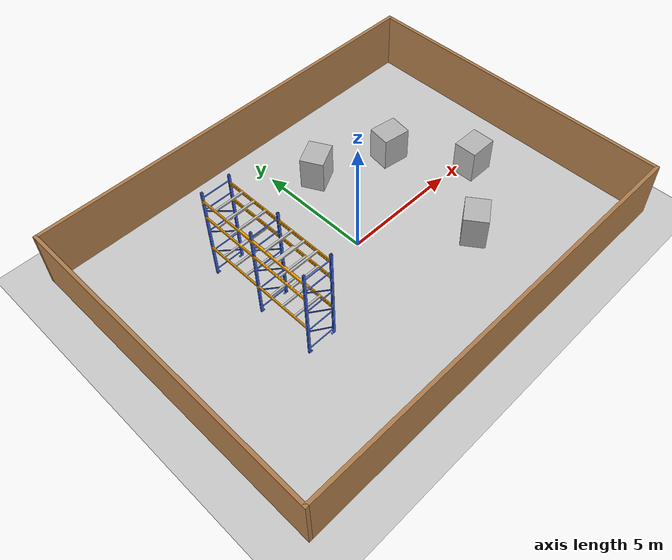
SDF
<sdf version="1.7">
 <world name="default">
  <scene>
   <sky><clouds><speed>12</speed></clouds></sky>
   <ambient>0.4 0.4 0.4 1</ambient>
   <background>0.7 0.7 0.7 1</background>
   <shadows>1</shadows>
  </scene>
  <light name="sun" type="directional">
   <pose>0 0 10 0 -0 0</pose>
   <diffuse>0.8 0.8 0.8 1</diffuse>
   <specular>0.2 0.2 0.2 1</specular>
   <attenuation>
    <range>1000</range>
    <constant>0.9</constant>
    <linear>0.01</linear>
    <quadratic>0.001</quadratic>
   </attenuation>
   <direction>-0.5 0.1 -0.9</direction>
   <spot><inner_angle>0</inner_angle><outer_angle>0</outer_angle><falloff>0</falloff></spot>
  </light>
  <model name="ground_plane">
   <static>1</static>
   <link name="link">
    <collision name="collision">
     <geometry><plane><normal>0 0 1</normal><size>100 100</size></plane></geometry>
     <surface>
      <contact><collide_bitmask>65535</collide_bitmask></contact>
      <friction><ode><mu>100</mu><mu2>50</mu2></ode></friction>
     </surface>
    </collision>
    <visual name="visual">
     <cast_shadows>0</cast_shadows>
     <geometry><plane><normal>0 0 1</normal><size>100 100</size></plane></geometry>
     <material>
      <script><uri>file://media/materials/scripts/gazebo.material</uri><name>Gazebo/Grey</name></script>
     </material>
    </visual>
   </link>
  </model>
  <gravity>0 0 -9.8</gravity>
  <magnetic_field>6e-06 2.3e-05 -4.2e-05</magnetic_field>
  <atmosphere type="adiabatic"/>
  <physics type="ode">
   <max_step_size>0.001</max_step_size>
   <real_time_factor>1</real_time_factor>
   <real_time_update_rate>1000</real_time_update_rate>
  </physics>
  <spherical_coordinates>
   <surface_model>EARTH_WGS84</surface_model>
   <latitude_deg>0</latitude_deg>
   <longitude_deg>0</longitude_deg>
   <elevation>0</elevation>
   <heading_deg>0</heading_deg>
  </spherical_coordinates>
  <model name="wall">
   <link name="Wall_16">
    <collision name="Wall_16_Collision">
     <geometry><box><size>18.5 0.15 2.5</size></box></geometry>
     <pose>0 0 1.25 0 -0 0</pose>
    </collision>
    <visual name="Wall_16_Visual">
     <pose>0 0 1.25 0 -0 0</pose>
     <geometry><box><size>18.5 0.15 2.5</size></box></geometry>
     <material>
      <script><uri>file://media/materials/scripts/gazebo.material</uri><name>Gazebo/Wood</name></script>
      <ambient>0.760784 0.662745 0.627451 1</ambient>
     </material>
     <meta><layer>0</layer></meta>
    </visual>
    <pose>0 6.925 0 0 -0 0</pose>
   </link>
   <link name="Wall_17">
    <collision name="Wall_17_Collision">
     <geometry><box><size>14 0.15 2.5</size></box></geometry>
     <pose>0 0 1.25 0 -0 0</pose>
    </collision>
    <visual name="Wall_17_Visual">
     <pose>0 0 1.25 0 -0 0</pose>
     <geometry><box><size>14 0.15 2.5</size></box></geometry>
     <material>
      <script><uri>file://media/materials/scripts/gazebo.material</uri><name>Gazebo/Wood</name></script>
      <ambient>1 1 1 1</ambient>
     </material>
     <meta><layer>0</layer></meta>
    </visual>
    <pose>9.175 0 0 0 -0 -1.5708</pose>
   </link>
   <link name="Wall_21">
    <collision name="Wall_21_Collision">
     <geometry><box><size>18.5 0.15 2.5</size></box></geometry>
     <pose>0 0 1.25 0 -0 0</pose>
    </collision>
    <visual name="Wall_21_Visual">
     <pose>0 0 1.25 0 -0 0</pose>
     <geometry><box><size>18.5 0.15 2.5</size></box></geometry>
     <material>
      <script><uri>file://media/materials/scripts/gazebo.material</uri><name>Gazebo/Wood</name></script>
      <ambient>1 1 1 1</ambient>
     </material>
     <meta><layer>0</layer></meta>
    </visual>
    <pose>0 -6.925 0 0 -0 3.14159</pose>
   </link>
   <link name="Wall_23">
    <collision name="Wall_23_Collision">
     <geometry><box><size>14 0.15 2.5</size></box></geometry>
     <pose>0 0 1.25 0 -0 0</pose>
    </collision>
    <visual name="Wall_23_Visual">
     <pose>0 0 1.25 0 -0 0</pose>
     <geometry><box><size>14 0.15 2.5</size></box></geometry>
     <material>
      <script><uri>file://media/materials/scripts/gazebo.material</uri><name>Gazebo/Wood</name></script>
      <ambient>1 1 1 1</ambient>
     </material>
     <meta><layer>0</layer></meta>
    </visual>
    <pose>-9.175 0 0 0 -0 -1.5708</pose>
   </link>
   <static>1</static>
  </model>
  <model name="Big box">
   <pose>1.3457 3.68098 0.749497 0 -0.000828 0.481795</pose>
   <static>0</static>
   <link name="link">
    <inertial>
     <mass>40</mass>
     <inertia><ixx>1</ixx><ixy>0</ixy><ixz>0</ixz><iyy>1</iyy><iyz>0</iyz><izz>1</izz></inertia>
    </inertial>
    <collision name="collision">
     <geometry><box><size>1.2 0.8 1.5</size></box></geometry>
     <surface><contact><ode><max_vel>0.1</max_vel><min_depth>0.001</min_depth></ode></contact></surface>
    </collision>
    <visual name="visual"><geometry><mesh><uri>model://big_box/meshes/big_box.dae</uri></mesh></geometry></visual>
   </link>
  </model>
  <model name="Big box_0">
   <pose>6.30254 -0.491217 0.749498 -0 -0.00083 2e-06</pose>
   <static>0</static>
   <link name="link">
    <inertial>
     <mass>40</mass>
     <inertia><ixx>1</ixx><ixy>0</ixy><ixz>0</ixz><iyy>1</iyy><iyz>0</iyz><izz>1</izz></inertia>
    </inertial>
    <collision name="collision">
     <geometry><box><size>1.2 0.8 1.5</size></box></geometry>
     <surface><contact><ode><max_vel>0.1</max_vel><min_depth>0.001</min_depth></ode></contact></surface>
    </collision>
    <visual name="visual"><geometry><mesh><uri>model://big_box/meshes/big_box.dae</uri></mesh></geometry></visual>
   </link>
  </model>
  <model name="Big box 2">
   <pose>4.41444 2.48073 0.749499 0.001242 -5e-06 -0.14221</pose>
   <static>0</static>
   <link name="link">
    <inertial>
     <mass>40</mass>
     <inertia><ixx>1</ixx><ixy>0</ixy><ixz>0</ixz><iyy>1</iyy><iyz>0</iyz><izz>1</izz></inertia>
    </inertial>
    <collision name="collision">
     <geometry><box><size>1.2 0.8 1.5</size></box></geometry>
     <surface><contact><ode><max_vel>0.1</max_vel><min_depth>0.001</min_depth></ode></contact></surface>
    </collision>
    <visual name="visual">
     <geometry><mesh><uri>model://big_box2/meshes/big_box.dae</uri></mesh></geometry>
    </visual>
   </link>
  </model>
  <model name="Shelves high">
   <static>1</static>
   <link name="link">
    <collision name="collision">
     <geometry>
      <mesh><uri>model://shelves_high/meshes/shelves_high_collision.dae</uri><scale>1 1.2 1.2</scale></mesh>
     </geometry>
    </collision>
    <visual name="visual">
     <geometry>
      <mesh><uri>model://shelves_high/meshes/shelves_high.dae</uri><scale>1 1.2 1.2</scale></mesh>
     </geometry>
    </visual>
   </link>
   <pose>-4.70615 0.295099 0 0 -0 1.57</pose>
  </model>
  <model name="Big box 2_0">
   <pose>3.49026 -2.91624 0.749498 0 -0.000831 0.610328</pose>
   <static>0</static>
   <link name="link">
    <inertial>
     <mass>40</mass>
     <inertia><ixx>1</ixx><ixy>0</ixy><ixz>0</ixz><iyy>1</iyy><iyz>0</iyz><izz>1</izz></inertia>
    </inertial>
    <collision name="collision">
     <geometry><box><size>1.2 0.8 1.5</size></box></geometry>
     <surface><contact><ode><max_vel>0.1</max_vel><min_depth>0.001</min_depth></ode></contact></surface>
    </collision>
    <visual name="visual">
     <geometry><mesh><uri>model://big_box2/meshes/big_box.dae</uri></mesh></geometry>
    </visual>
   </link>
  </model>
 </world>
</sdf>
